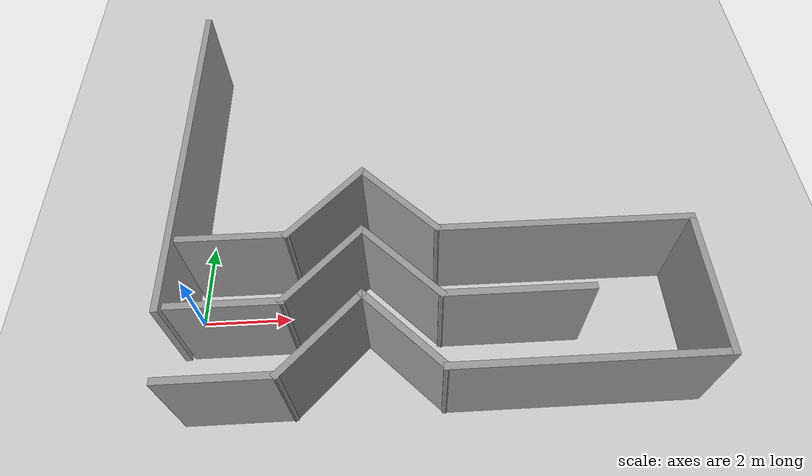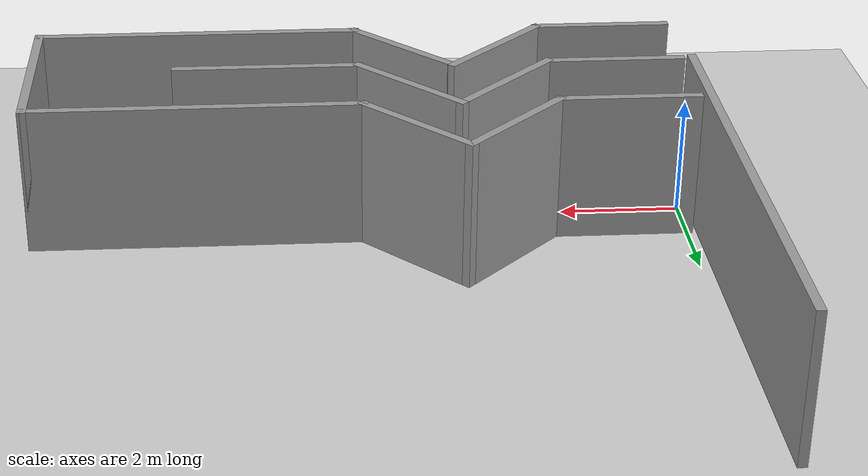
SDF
<sdf version="1.6">
 <world name="default">
  <light name="sun" type="directional">
   <pose>0 0 10 0 -0 0</pose>
   <diffuse>0.8 0.8 0.8 1</diffuse>
   <specular>0.2 0.2 0.2 1</specular>
   <attenuation>
    <range>1000</range>
    <constant>0.9</constant>
    <linear>0.01</linear>
    <quadratic>0.001</quadratic>
   </attenuation>
   <direction>-0.5 0.1 -0.9</direction>
  </light>
  <model name="ground_plane">
   <static>1</static>
   <link name="link">
    <collision name="collision">
     <geometry><plane><normal>0 0 1</normal><size>100 100</size></plane></geometry>
     <surface><friction><ode><mu>100</mu><mu2>50</mu2></ode></friction></surface>
    </collision>
    <visual name="visual">
     <cast_shadows>0</cast_shadows>
     <geometry><plane><normal>0 0 1</normal><size>100 100</size></plane></geometry>
     <material>
      <script><uri>file://media/materials/scripts/gazebo.material</uri><name>Gazebo/Grey</name></script>
     </material>
    </visual>
   </link>
  </model>
  <gravity>0 0 -9.8</gravity>
  <magnetic_field>6e-06 2.3e-05 -4.2e-05</magnetic_field>
  <atmosphere type="adiabatic"/>
  <physics name="default_physics" default="0" type="ode">
   <max_step_size>0.001</max_step_size>
   <real_time_factor>1</real_time_factor>
   <real_time_update_rate>1000</real_time_update_rate>
  </physics>
  <scene><ambient>0.4 0.4 0.4 1</ambient><background>0.7 0.7 0.7 1</background><shadows>1</shadows></scene>
  <audio><device>default</device></audio>
  <spherical_coordinates>
   <surface_model>EARTH_WGS84</surface_model>
   <latitude_deg>0</latitude_deg>
   <longitude_deg>0</longitude_deg>
   <elevation>0</elevation>
   <heading_deg>0</heading_deg>
  </spherical_coordinates>
  <model name="mywall">
   <pose>5.41141 0.049786 0 0 -0 0</pose>
   <link name="Wall_48">
    <collision name="Wall_48_Collision">
     <geometry><box><size>2.4 0.15 2.5</size></box></geometry>
     <pose>0 0 1.25 0 -0 0</pose>
    </collision>
    <visual name="Wall_48_Visual">
     <pose>0 0 1.25 0 -0 0</pose>
     <geometry><box><size>2.4 0.15 2.5</size></box></geometry>
     <material>
      <script><uri>file://media/materials/scripts/gazebo.material</uri><name>Gazebo/Grey</name></script>
      <ambient>1 1 1 1</ambient>
     </material>
     <meta><layer>0</layer></meta>
    </visual>
    <pose>-4.31599 0.729505 0 0 -0 0</pose>
   </link>
   <link name="Wall_50">
    <collision name="Wall_50_Collision">
     <geometry><box><size>2.4 0.15 2.5</size></box></geometry>
     <pose>0 0 1.25 0 -0 0</pose>
    </collision>
    <visual name="Wall_50_Visual">
     <pose>0 0 1.25 0 -0 0</pose>
     <geometry><box><size>2.4 0.15 2.5</size></box></geometry>
     <material>
      <script><uri>file://media/materials/scripts/gazebo.material</uri><name>Gazebo/Grey</name></script>
      <ambient>1 1 1 1</ambient>
     </material>
     <meta><layer>0</layer></meta>
    </visual>
    <pose>-2.39549 1.525 0 0 -0 0.785398</pose>
   </link>
   <link name="Wall_52">
    <collision name="Wall_52_Collision">
     <geometry><box><size>2.4 0.15 2.5</size></box></geometry>
     <pose>0 0 1.25 0 -0 0</pose>
    </collision>
    <visual name="Wall_52_Visual">
     <pose>0 0 1.25 0 -0 0</pose>
     <geometry><box><size>2.4 0.15 2.5</size></box></geometry>
     <material>
      <script><uri>file://media/materials/scripts/gazebo.material</uri><name>Gazebo/Grey</name></script>
      <ambient>1 1 1 1</ambient>
     </material>
     <meta><layer>0</layer></meta>
    </visual>
    <pose>-0.804505 1.525 0 0 -0 -0.785398</pose>
   </link>
   <link name="Wall_54">
    <collision name="Wall_54_Collision">
     <geometry><box><size>5.6 0.15 2.5</size></box></geometry>
     <pose>0 0 1.25 0 -0 0</pose>
    </collision>
    <visual name="Wall_54_Visual">
     <pose>0 0 1.25 0 -0 0</pose>
     <geometry><box><size>5.6 0.15 2.5</size></box></geometry>
     <material>
      <script><uri>file://media/materials/scripts/gazebo.material</uri><name>Gazebo/Grey</name></script>
      <ambient>1 1 1 1</ambient>
     </material>
     <meta><layer>0</layer></meta>
    </visual>
    <pose>2.71599 0.729505 0 0 -0 0</pose>
   </link>
   <link name="Wall_56">
    <collision name="Wall_56_Collision">
     <geometry><box><size>3.2 0.15 2.5</size></box></geometry>
     <pose>0 0 1.25 0 -0 0</pose>
    </collision>
    <visual name="Wall_56_Visual">
     <pose>0 0 1.25 0 -0 0</pose>
     <geometry><box><size>3.2 0.15 2.5</size></box></geometry>
     <material>
      <script><uri>file://media/materials/scripts/gazebo.material</uri><name>Gazebo/Grey</name></script>
      <ambient>1 1 1 1</ambient>
     </material>
     <meta><layer>0</layer></meta>
    </visual>
    <pose>5.44099 -0.795495 0 0 -0 -1.5708</pose>
   </link>
   <link name="Wall_58">
    <collision name="Wall_58_Collision">
     <geometry><box><size>5.6 0.15 2.5</size></box></geometry>
     <pose>0 0 1.25 0 -0 0</pose>
    </collision>
    <visual name="Wall_58_Visual">
     <pose>0 0 1.25 0 -0 0</pose>
     <geometry><box><size>5.6 0.15 2.5</size></box></geometry>
     <material>
      <script><uri>file://media/materials/scripts/gazebo.material</uri><name>Gazebo/Grey</name></script>
      <ambient>1 1 1 1</ambient>
     </material>
     <meta><layer>0</layer></meta>
    </visual>
    <pose>2.71599 -2.3205 0 0 -0 3.14159</pose>
   </link>
   <link name="Wall_60">
    <collision name="Wall_60_Collision">
     <geometry><box><size>2.4 0.15 2.5</size></box></geometry>
     <pose>0 0 1.25 0 -0 0</pose>
    </collision>
    <visual name="Wall_60_Visual">
     <pose>0 0 1.25 0 -0 0</pose>
     <geometry><box><size>2.4 0.15 2.5</size></box></geometry>
     <material>
      <script><uri>file://media/materials/scripts/gazebo.material</uri><name>Gazebo/Grey</name></script>
      <ambient>1 1 1 1</ambient>
     </material>
     <meta><layer>0</layer></meta>
    </visual>
    <pose>-0.804505 -1.525 0 0 -0 2.35619</pose>
   </link>
   <link name="Wall_62">
    <collision name="Wall_62_Collision">
     <geometry><box><size>2.4 0.15 2.5</size></box></geometry>
     <pose>0 0 1.25 0 -0 0</pose>
    </collision>
    <visual name="Wall_62_Visual">
     <pose>0 0 1.25 0 -0 0</pose>
     <geometry><box><size>2.4 0.15 2.5</size></box></geometry>
     <material>
      <script><uri>file://media/materials/scripts/gazebo.material</uri><name>Gazebo/Grey</name></script>
      <ambient>1 1 1 1</ambient>
     </material>
     <meta><layer>0</layer></meta>
    </visual>
    <pose>-2.39549 -1.525 0 0 -0 -2.35619</pose>
   </link>
   <link name="Wall_64">
    <collision name="Wall_64_Collision">
     <geometry><box><size>2.4 0.15 2.5</size></box></geometry>
     <pose>0 0 1.25 0 -0 0</pose>
    </collision>
    <visual name="Wall_64_Visual">
     <pose>0 0 1.25 0 -0 0</pose>
     <geometry><box><size>2.4 0.15 2.5</size></box></geometry>
     <material>
      <script><uri>file://media/materials/scripts/gazebo.material</uri><name>Gazebo/Grey</name></script>
      <ambient>1 1 1 1</ambient>
     </material>
     <meta><layer>0</layer></meta>
    </visual>
    <pose>-4.31599 -2.3205 0 0 -0 3.14159</pose>
   </link>
   <link name="Wall_68">
    <collision name="Wall_68_Collision">
     <geometry><box><size>2.4 0.15 2.5</size></box></geometry>
     <pose>0 0 1.25 0 -0 0</pose>
    </collision>
    <visual name="Wall_68_Visual">
     <pose>0 0 1.25 0 -0 0</pose>
     <geometry><box><size>2.4 0.15 2.5</size></box></geometry>
     <material>
      <script><uri>file://media/materials/scripts/gazebo.material</uri><name>Gazebo/Grey</name></script>
      <ambient>1 1 1 1</ambient>
     </material>
     <meta><layer>0</layer></meta>
    </visual>
    <pose>-4.31599 -0.810004 0 0 -0 0</pose>
   </link>
   <link name="Wall_79">
    <collision name="Wall_79_Collision">
     <geometry><box><size>2.4 0.15 2.5</size></box></geometry>
     <pose>0 0 1.25 0 -0 0</pose>
    </collision>
    <visual name="Wall_79_Visual">
     <pose>0 0 1.25 0 -0 0</pose>
     <geometry><box><size>2.4 0.15 2.5</size></box></geometry>
     <material>
      <script><uri>file://media/materials/scripts/gazebo.material</uri><name>Gazebo/Grey</name></script>
      <ambient>1 1 1 1</ambient>
     </material>
     <meta><layer>0</layer></meta>
    </visual>
    <pose>-2.39549 -0.014509 0 0 -0 0.785398</pose>
   </link>
   <link name="Wall_81">
    <collision name="Wall_81_Collision">
     <geometry><box><size>2.4 0.15 2.5</size></box></geometry>
     <pose>0 0 1.25 0 -0 0</pose>
    </collision>
    <visual name="Wall_81_Visual">
     <pose>0 0 1.25 0 -0 0</pose>
     <geometry><box><size>2.4 0.15 2.5</size></box></geometry>
     <material>
      <script><uri>file://media/materials/scripts/gazebo.material</uri><name>Gazebo/Grey</name></script>
      <ambient>1 1 1 1</ambient>
     </material>
     <meta><layer>0</layer></meta>
    </visual>
    <pose>-0.804505 -0.014509 0 0 -0 -0.785398</pose>
   </link>
   <link name="Wall_84">
    <collision name="Wall_84_Collision">
     <geometry><box><size>3.2 0.15 2.5</size></box></geometry>
     <pose>0 0 1.25 0 -0 0</pose>
    </collision>
    <visual name="Wall_84_Visual">
     <pose>0 0 1.25 0 -0 0</pose>
     <geometry><box><size>3.2 0.15 2.5</size></box></geometry>
     <material>
      <script><uri>file://media/materials/scripts/gazebo.material</uri><name>Gazebo/Grey</name></script>
      <ambient>1 1 1 1</ambient>
     </material>
     <meta><layer>0</layer></meta>
    </visual>
    <pose>1.51599 -0.810004 0 0 -0 0</pose>
   </link>
   <static>1</static>
  </model>
  <model name="Untitled2">
   <pose>-0.245222 3.38037 0 0 -0 0</pose>
   <link name="Wall_2">
    <collision name="Wall_2_Collision">
     <geometry><box><size>8.5 0.15 2.5</size></box></geometry>
     <pose>0 0 1.25 0 -0 0</pose>
    </collision>
    <visual name="Wall_2_Visual">
     <pose>0 0 1.25 0 -0 0</pose>
     <geometry><box><size>8.5 0.15 2.5</size></box></geometry>
     <material>
      <script><uri>file://media/materials/scripts/gazebo.material</uri><name>Gazebo/Grey</name></script>
      <ambient>1 1 1 1</ambient>
     </material>
     <meta><layer>0</layer></meta>
    </visual>
    <pose>0 -0 0 0 -0 -1.5708</pose>
   </link>
   <static>1</static>
  </model>
 </world>
</sdf>
